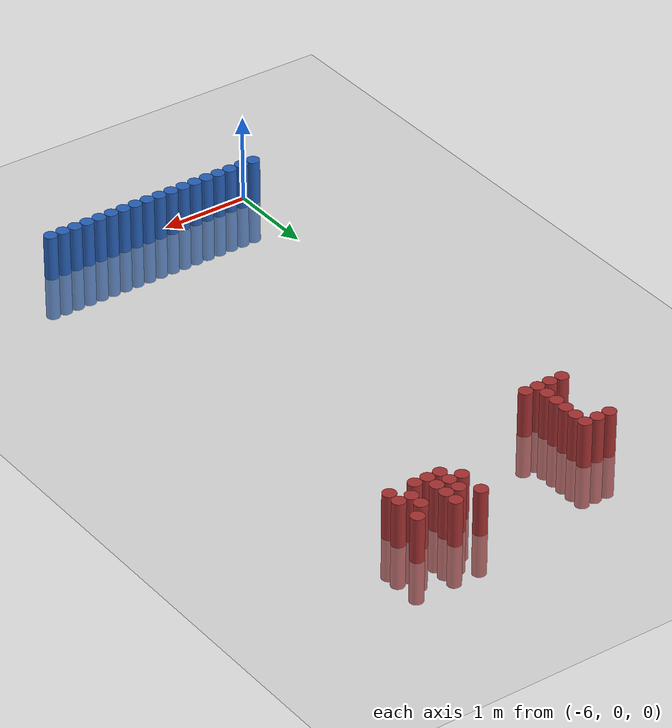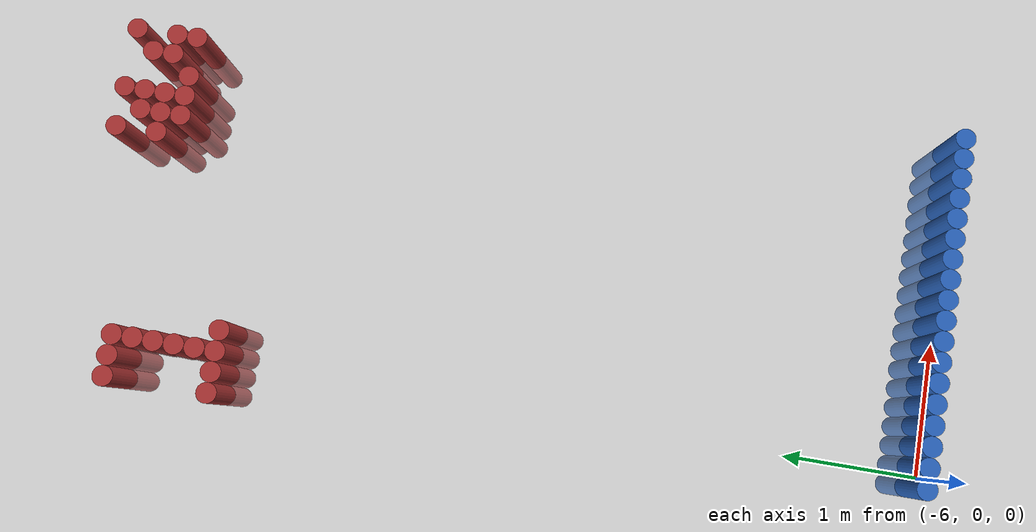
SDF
<sdf version="1.6">
 <world name="default">
  <model name="ground_plane">
   <static>1</static>
   <link name="link">
    <collision name="collision">
     <geometry><plane><normal>0 0 1</normal><size>100 100</size></plane></geometry>
     <surface><friction><ode><mu>100</mu><mu2>50</mu2></ode></friction></surface>
    </collision>
    <visual name="visual">
     <cast_shadows>0</cast_shadows>
     <geometry><plane><normal>0 0 1</normal><size>100 100</size></plane></geometry>
     <material>
      <script><uri>file://media/materials/scripts/gazebo.material</uri><name>Gazebo/Grey</name></script>
     </material>
    </visual>
   </link>
  </model>
  <model name="unit_cylinder_23">
   <static>1</static>
   <pose>-3.525000 0.075000 0.000000 0.000000 0.000000 0.000000</pose>
   <link name="link">
    <inertial>
     <mass>1</mass>
     <inertia><ixx>0.145833</ixx><ixy>0</ixy><ixz>0</ixz><iyy>0.145833</iyy><iyz>0</iyz><izz>0.125</izz></inertia>
    </inertial>
    <collision name="collision">
     <geometry><cylinder><radius>0.075000</radius><length>1</length></cylinder></geometry>
    </collision>
    <visual name="visual">
     <geometry><cylinder><radius>0.075000</radius><length>1</length></cylinder></geometry>
     <material>
      <ambient>0.152000 0.379000 0.720000 1</ambient>
      <diffuse>0.152000 0.379000 0.720000 1</diffuse>
     </material>
     <material>
      <script><name>Gazebo/Grey</name><uri>file://media/materials/scripts/gazebo.material</uri></script>
     </material>
    </visual>
   </link>
  </model>
  <model name="unit_cylinder_24">
   <static>1</static>
   <pose>-3.675000 0.075000 0.000000 0.000000 0.000000 0.000000</pose>
   <link name="link">
    <inertial>
     <mass>1</mass>
     <inertia><ixx>0.145833</ixx><ixy>0</ixy><ixz>0</ixz><iyy>0.145833</iyy><iyz>0</iyz><izz>0.125</izz></inertia>
    </inertial>
    <collision name="collision">
     <geometry><cylinder><radius>0.075000</radius><length>1</length></cylinder></geometry>
    </collision>
    <visual name="visual">
     <geometry><cylinder><radius>0.075000</radius><length>1</length></cylinder></geometry>
     <material>
      <ambient>0.152000 0.379000 0.720000 1</ambient>
      <diffuse>0.152000 0.379000 0.720000 1</diffuse>
     </material>
     <material>
      <script><name>Gazebo/Grey</name><uri>file://media/materials/scripts/gazebo.material</uri></script>
     </material>
    </visual>
   </link>
  </model>
  <model name="unit_cylinder_25">
   <static>1</static>
   <pose>-3.825000 0.075000 0.000000 0.000000 0.000000 0.000000</pose>
   <link name="link">
    <inertial>
     <mass>1</mass>
     <inertia><ixx>0.145833</ixx><ixy>0</ixy><ixz>0</ixz><iyy>0.145833</iyy><iyz>0</iyz><izz>0.125</izz></inertia>
    </inertial>
    <collision name="collision">
     <geometry><cylinder><radius>0.075000</radius><length>1</length></cylinder></geometry>
    </collision>
    <visual name="visual">
     <geometry><cylinder><radius>0.075000</radius><length>1</length></cylinder></geometry>
     <material>
      <ambient>0.152000 0.379000 0.720000 1</ambient>
      <diffuse>0.152000 0.379000 0.720000 1</diffuse>
     </material>
     <material>
      <script><name>Gazebo/Grey</name><uri>file://media/materials/scripts/gazebo.material</uri></script>
     </material>
    </visual>
   </link>
  </model>
  <model name="unit_cylinder_26">
   <static>1</static>
   <pose>-3.975000 0.075000 0.000000 0.000000 0.000000 0.000000</pose>
   <link name="link">
    <inertial>
     <mass>1</mass>
     <inertia><ixx>0.145833</ixx><ixy>0</ixy><ixz>0</ixz><iyy>0.145833</iyy><iyz>0</iyz><izz>0.125</izz></inertia>
    </inertial>
    <collision name="collision">
     <geometry><cylinder><radius>0.075000</radius><length>1</length></cylinder></geometry>
    </collision>
    <visual name="visual">
     <geometry><cylinder><radius>0.075000</radius><length>1</length></cylinder></geometry>
     <material>
      <ambient>0.152000 0.379000 0.720000 1</ambient>
      <diffuse>0.152000 0.379000 0.720000 1</diffuse>
     </material>
     <material>
      <script><name>Gazebo/Grey</name><uri>file://media/materials/scripts/gazebo.material</uri></script>
     </material>
    </visual>
   </link>
  </model>
  <model name="unit_cylinder_27">
   <static>1</static>
   <pose>-4.125000 0.075000 0.000000 0.000000 0.000000 0.000000</pose>
   <link name="link">
    <inertial>
     <mass>1</mass>
     <inertia><ixx>0.145833</ixx><ixy>0</ixy><ixz>0</ixz><iyy>0.145833</iyy><iyz>0</iyz><izz>0.125</izz></inertia>
    </inertial>
    <collision name="collision">
     <geometry><cylinder><radius>0.075000</radius><length>1</length></cylinder></geometry>
    </collision>
    <visual name="visual">
     <geometry><cylinder><radius>0.075000</radius><length>1</length></cylinder></geometry>
     <material>
      <ambient>0.152000 0.379000 0.720000 1</ambient>
      <diffuse>0.152000 0.379000 0.720000 1</diffuse>
     </material>
     <material>
      <script><name>Gazebo/Grey</name><uri>file://media/materials/scripts/gazebo.material</uri></script>
     </material>
    </visual>
   </link>
  </model>
  <model name="unit_cylinder_28">
   <static>1</static>
   <pose>-4.275000 0.075000 0.000000 0.000000 0.000000 0.000000</pose>
   <link name="link">
    <inertial>
     <mass>1</mass>
     <inertia><ixx>0.145833</ixx><ixy>0</ixy><ixz>0</ixz><iyy>0.145833</iyy><iyz>0</iyz><izz>0.125</izz></inertia>
    </inertial>
    <collision name="collision">
     <geometry><cylinder><radius>0.075000</radius><length>1</length></cylinder></geometry>
    </collision>
    <visual name="visual">
     <geometry><cylinder><radius>0.075000</radius><length>1</length></cylinder></geometry>
     <material>
      <ambient>0.152000 0.379000 0.720000 1</ambient>
      <diffuse>0.152000 0.379000 0.720000 1</diffuse>
     </material>
     <material>
      <script><name>Gazebo/Grey</name><uri>file://media/materials/scripts/gazebo.material</uri></script>
     </material>
    </visual>
   </link>
  </model>
  <model name="unit_cylinder_29">
   <static>1</static>
   <pose>-4.425000 0.075000 0.000000 0.000000 0.000000 0.000000</pose>
   <link name="link">
    <inertial>
     <mass>1</mass>
     <inertia><ixx>0.145833</ixx><ixy>0</ixy><ixz>0</ixz><iyy>0.145833</iyy><iyz>0</iyz><izz>0.125</izz></inertia>
    </inertial>
    <collision name="collision">
     <geometry><cylinder><radius>0.075000</radius><length>1</length></cylinder></geometry>
    </collision>
    <visual name="visual">
     <geometry><cylinder><radius>0.075000</radius><length>1</length></cylinder></geometry>
     <material>
      <ambient>0.152000 0.379000 0.720000 1</ambient>
      <diffuse>0.152000 0.379000 0.720000 1</diffuse>
     </material>
     <material>
      <script><name>Gazebo/Grey</name><uri>file://media/materials/scripts/gazebo.material</uri></script>
     </material>
    </visual>
   </link>
  </model>
  <model name="unit_cylinder_30">
   <static>1</static>
   <pose>-4.575000 0.075000 0.000000 0.000000 0.000000 0.000000</pose>
   <link name="link">
    <inertial>
     <mass>1</mass>
     <inertia><ixx>0.145833</ixx><ixy>0</ixy><ixz>0</ixz><iyy>0.145833</iyy><iyz>0</iyz><izz>0.125</izz></inertia>
    </inertial>
    <collision name="collision">
     <geometry><cylinder><radius>0.075000</radius><length>1</length></cylinder></geometry>
    </collision>
    <visual name="visual">
     <geometry><cylinder><radius>0.075000</radius><length>1</length></cylinder></geometry>
     <material>
      <ambient>0.152000 0.379000 0.720000 1</ambient>
      <diffuse>0.152000 0.379000 0.720000 1</diffuse>
     </material>
     <material>
      <script><name>Gazebo/Grey</name><uri>file://media/materials/scripts/gazebo.material</uri></script>
     </material>
    </visual>
   </link>
  </model>
  <model name="unit_cylinder_31">
   <static>1</static>
   <pose>-4.725000 0.075000 0.000000 0.000000 0.000000 0.000000</pose>
   <link name="link">
    <inertial>
     <mass>1</mass>
     <inertia><ixx>0.145833</ixx><ixy>0</ixy><ixz>0</ixz><iyy>0.145833</iyy><iyz>0</iyz><izz>0.125</izz></inertia>
    </inertial>
    <collision name="collision">
     <geometry><cylinder><radius>0.075000</radius><length>1</length></cylinder></geometry>
    </collision>
    <visual name="visual">
     <geometry><cylinder><radius>0.075000</radius><length>1</length></cylinder></geometry>
     <material>
      <ambient>0.152000 0.379000 0.720000 1</ambient>
      <diffuse>0.152000 0.379000 0.720000 1</diffuse>
     </material>
     <material>
      <script><name>Gazebo/Grey</name><uri>file://media/materials/scripts/gazebo.material</uri></script>
     </material>
    </visual>
   </link>
  </model>
  <model name="unit_cylinder_32">
   <static>1</static>
   <pose>-4.875000 0.075000 0.000000 0.000000 0.000000 0.000000</pose>
   <link name="link">
    <inertial>
     <mass>1</mass>
     <inertia><ixx>0.145833</ixx><ixy>0</ixy><ixz>0</ixz><iyy>0.145833</iyy><iyz>0</iyz><izz>0.125</izz></inertia>
    </inertial>
    <collision name="collision">
     <geometry><cylinder><radius>0.075000</radius><length>1</length></cylinder></geometry>
    </collision>
    <visual name="visual">
     <geometry><cylinder><radius>0.075000</radius><length>1</length></cylinder></geometry>
     <material>
      <ambient>0.152000 0.379000 0.720000 1</ambient>
      <diffuse>0.152000 0.379000 0.720000 1</diffuse>
     </material>
     <material>
      <script><name>Gazebo/Grey</name><uri>file://media/materials/scripts/gazebo.material</uri></script>
     </material>
    </visual>
   </link>
  </model>
  <model name="unit_cylinder_33">
   <static>1</static>
   <pose>-5.025000 0.075000 0.000000 0.000000 0.000000 0.000000</pose>
   <link name="link">
    <inertial>
     <mass>1</mass>
     <inertia><ixx>0.145833</ixx><ixy>0</ixy><ixz>0</ixz><iyy>0.145833</iyy><iyz>0</iyz><izz>0.125</izz></inertia>
    </inertial>
    <collision name="collision">
     <geometry><cylinder><radius>0.075000</radius><length>1</length></cylinder></geometry>
    </collision>
    <visual name="visual">
     <geometry><cylinder><radius>0.075000</radius><length>1</length></cylinder></geometry>
     <material>
      <ambient>0.152000 0.379000 0.720000 1</ambient>
      <diffuse>0.152000 0.379000 0.720000 1</diffuse>
     </material>
     <material>
      <script><name>Gazebo/Grey</name><uri>file://media/materials/scripts/gazebo.material</uri></script>
     </material>
    </visual>
   </link>
  </model>
  <model name="unit_cylinder_34">
   <static>1</static>
   <pose>-5.175000 0.075000 0.000000 0.000000 0.000000 0.000000</pose>
   <link name="link">
    <inertial>
     <mass>1</mass>
     <inertia><ixx>0.145833</ixx><ixy>0</ixy><ixz>0</ixz><iyy>0.145833</iyy><iyz>0</iyz><izz>0.125</izz></inertia>
    </inertial>
    <collision name="collision">
     <geometry><cylinder><radius>0.075000</radius><length>1</length></cylinder></geometry>
    </collision>
    <visual name="visual">
     <geometry><cylinder><radius>0.075000</radius><length>1</length></cylinder></geometry>
     <material>
      <ambient>0.152000 0.379000 0.720000 1</ambient>
      <diffuse>0.152000 0.379000 0.720000 1</diffuse>
     </material>
     <material>
      <script><name>Gazebo/Grey</name><uri>file://media/materials/scripts/gazebo.material</uri></script>
     </material>
    </visual>
   </link>
  </model>
  <model name="unit_cylinder_35">
   <static>1</static>
   <pose>-5.325000 0.075000 0.000000 0.000000 0.000000 0.000000</pose>
   <link name="link">
    <inertial>
     <mass>1</mass>
     <inertia><ixx>0.145833</ixx><ixy>0</ixy><ixz>0</ixz><iyy>0.145833</iyy><iyz>0</iyz><izz>0.125</izz></inertia>
    </inertial>
    <collision name="collision">
     <geometry><cylinder><radius>0.075000</radius><length>1</length></cylinder></geometry>
    </collision>
    <visual name="visual">
     <geometry><cylinder><radius>0.075000</radius><length>1</length></cylinder></geometry>
     <material>
      <ambient>0.152000 0.379000 0.720000 1</ambient>
      <diffuse>0.152000 0.379000 0.720000 1</diffuse>
     </material>
     <material>
      <script><name>Gazebo/Grey</name><uri>file://media/materials/scripts/gazebo.material</uri></script>
     </material>
    </visual>
   </link>
  </model>
  <model name="unit_cylinder_36">
   <static>1</static>
   <pose>-5.475000 0.075000 0.000000 0.000000 0.000000 0.000000</pose>
   <link name="link">
    <inertial>
     <mass>1</mass>
     <inertia><ixx>0.145833</ixx><ixy>0</ixy><ixz>0</ixz><iyy>0.145833</iyy><iyz>0</iyz><izz>0.125</izz></inertia>
    </inertial>
    <collision name="collision">
     <geometry><cylinder><radius>0.075000</radius><length>1</length></cylinder></geometry>
    </collision>
    <visual name="visual">
     <geometry><cylinder><radius>0.075000</radius><length>1</length></cylinder></geometry>
     <material>
      <ambient>0.152000 0.379000 0.720000 1</ambient>
      <diffuse>0.152000 0.379000 0.720000 1</diffuse>
     </material>
     <material>
      <script><name>Gazebo/Grey</name><uri>file://media/materials/scripts/gazebo.material</uri></script>
     </material>
    </visual>
   </link>
  </model>
  <model name="unit_cylinder_37">
   <static>1</static>
   <pose>-5.625000 0.075000 0.000000 0.000000 0.000000 0.000000</pose>
   <link name="link">
    <inertial>
     <mass>1</mass>
     <inertia><ixx>0.145833</ixx><ixy>0</ixy><ixz>0</ixz><iyy>0.145833</iyy><iyz>0</iyz><izz>0.125</izz></inertia>
    </inertial>
    <collision name="collision">
     <geometry><cylinder><radius>0.075000</radius><length>1</length></cylinder></geometry>
    </collision>
    <visual name="visual">
     <geometry><cylinder><radius>0.075000</radius><length>1</length></cylinder></geometry>
     <material>
      <ambient>0.152000 0.379000 0.720000 1</ambient>
      <diffuse>0.152000 0.379000 0.720000 1</diffuse>
     </material>
     <material>
      <script><name>Gazebo/Grey</name><uri>file://media/materials/scripts/gazebo.material</uri></script>
     </material>
    </visual>
   </link>
  </model>
  <model name="unit_cylinder_38">
   <static>1</static>
   <pose>-5.775000 0.075000 0.000000 0.000000 0.000000 0.000000</pose>
   <link name="link">
    <inertial>
     <mass>1</mass>
     <inertia><ixx>0.145833</ixx><ixy>0</ixy><ixz>0</ixz><iyy>0.145833</iyy><iyz>0</iyz><izz>0.125</izz></inertia>
    </inertial>
    <collision name="collision">
     <geometry><cylinder><radius>0.075000</radius><length>1</length></cylinder></geometry>
    </collision>
    <visual name="visual">
     <geometry><cylinder><radius>0.075000</radius><length>1</length></cylinder></geometry>
     <material>
      <ambient>0.152000 0.379000 0.720000 1</ambient>
      <diffuse>0.152000 0.379000 0.720000 1</diffuse>
     </material>
     <material>
      <script><name>Gazebo/Grey</name><uri>file://media/materials/scripts/gazebo.material</uri></script>
     </material>
    </visual>
   </link>
  </model>
  <model name="unit_cylinder_39">
   <static>1</static>
   <pose>-5.925000 0.075000 0.000000 0.000000 0.000000 0.000000</pose>
   <link name="link">
    <inertial>
     <mass>1</mass>
     <inertia><ixx>0.145833</ixx><ixy>0</ixy><ixz>0</ixz><iyy>0.145833</iyy><iyz>0</iyz><izz>0.125</izz></inertia>
    </inertial>
    <collision name="collision">
     <geometry><cylinder><radius>0.075000</radius><length>1</length></cylinder></geometry>
    </collision>
    <visual name="visual">
     <geometry><cylinder><radius>0.075000</radius><length>1</length></cylinder></geometry>
     <material>
      <ambient>0.152000 0.379000 0.720000 1</ambient>
      <diffuse>0.152000 0.379000 0.720000 1</diffuse>
     </material>
     <material>
      <script><name>Gazebo/Grey</name><uri>file://media/materials/scripts/gazebo.material</uri></script>
     </material>
    </visual>
   </link>
  </model>
  <model name="unit_cylinder_40">
   <static>1</static>
   <pose>-6.075000 0.075000 0.000000 0.000000 0.000000 0.000000</pose>
   <link name="link">
    <inertial>
     <mass>1</mass>
     <inertia><ixx>0.145833</ixx><ixy>0</ixy><ixz>0</ixz><iyy>0.145833</iyy><iyz>0</iyz><izz>0.125</izz></inertia>
    </inertial>
    <collision name="collision">
     <geometry><cylinder><radius>0.075000</radius><length>1</length></cylinder></geometry>
    </collision>
    <visual name="visual">
     <geometry><cylinder><radius>0.075000</radius><length>1</length></cylinder></geometry>
     <material>
      <ambient>0.152000 0.379000 0.720000 1</ambient>
      <diffuse>0.152000 0.379000 0.720000 1</diffuse>
     </material>
     <material>
      <script><name>Gazebo/Grey</name><uri>file://media/materials/scripts/gazebo.material</uri></script>
     </material>
    </visual>
   </link>
  </model>
  <model name="unit_cylinder_239">
   <static>1</static>
   <pose>-6.225000 5.175000 0.000000 0.000000 0.000000 0.000000</pose>
   <link name="link">
    <inertial>
     <mass>1</mass>
     <inertia><ixx>0.145833</ixx><ixy>0</ixy><ixz>0</ixz><iyy>0.145833</iyy><iyz>0</iyz><izz>0.125</izz></inertia>
    </inertial>
    <collision name="collision">
     <geometry><cylinder><radius>0.075000</radius><length>1</length></cylinder></geometry>
    </collision>
    <visual name="visual">
     <geometry><cylinder><radius>0.075000</radius><length>1</length></cylinder></geometry>
     <material>
      <ambient>0.648000 0.192000 0.192000 1</ambient>
      <diffuse>0.648000 0.192000 0.192000 1</diffuse>
     </material>
     <material>
      <script><name>Gazebo/Grey</name><uri>file://media/materials/scripts/gazebo.material</uri></script>
     </material>
    </visual>
   </link>
  </model>
  <model name="unit_cylinder_240">
   <static>1</static>
   <pose>-6.225000 5.925000 0.000000 0.000000 0.000000 0.000000</pose>
   <link name="link">
    <inertial>
     <mass>1</mass>
     <inertia><ixx>0.145833</ixx><ixy>0</ixy><ixz>0</ixz><iyy>0.145833</iyy><iyz>0</iyz><izz>0.125</izz></inertia>
    </inertial>
    <collision name="collision">
     <geometry><cylinder><radius>0.075000</radius><length>1</length></cylinder></geometry>
    </collision>
    <visual name="visual">
     <geometry><cylinder><radius>0.075000</radius><length>1</length></cylinder></geometry>
     <material>
      <ambient>0.648000 0.192000 0.192000 1</ambient>
      <diffuse>0.648000 0.192000 0.192000 1</diffuse>
     </material>
     <material>
      <script><name>Gazebo/Grey</name><uri>file://media/materials/scripts/gazebo.material</uri></script>
     </material>
    </visual>
   </link>
  </model>
  <model name="unit_cylinder_246">
   <static>1</static>
   <pose>-6.075000 5.175000 0.000000 0.000000 0.000000 0.000000</pose>
   <link name="link">
    <inertial>
     <mass>1</mass>
     <inertia><ixx>0.145833</ixx><ixy>0</ixy><ixz>0</ixz><iyy>0.145833</iyy><iyz>0</iyz><izz>0.125</izz></inertia>
    </inertial>
    <collision name="collision">
     <geometry><cylinder><radius>0.075000</radius><length>1</length></cylinder></geometry>
    </collision>
    <visual name="visual">
     <geometry><cylinder><radius>0.075000</radius><length>1</length></cylinder></geometry>
     <material>
      <ambient>0.648000 0.192000 0.192000 1</ambient>
      <diffuse>0.648000 0.192000 0.192000 1</diffuse>
     </material>
     <material>
      <script><name>Gazebo/Grey</name><uri>file://media/materials/scripts/gazebo.material</uri></script>
     </material>
    </visual>
   </link>
  </model>
  <model name="unit_cylinder_247">
   <static>1</static>
   <pose>-6.075000 5.925000 0.000000 0.000000 0.000000 0.000000</pose>
   <link name="link">
    <inertial>
     <mass>1</mass>
     <inertia><ixx>0.145833</ixx><ixy>0</ixy><ixz>0</ixz><iyy>0.145833</iyy><iyz>0</iyz><izz>0.125</izz></inertia>
    </inertial>
    <collision name="collision">
     <geometry><cylinder><radius>0.075000</radius><length>1</length></cylinder></geometry>
    </collision>
    <visual name="visual">
     <geometry><cylinder><radius>0.075000</radius><length>1</length></cylinder></geometry>
     <material>
      <ambient>0.648000 0.192000 0.192000 1</ambient>
      <diffuse>0.648000 0.192000 0.192000 1</diffuse>
     </material>
     <material>
      <script><name>Gazebo/Grey</name><uri>file://media/materials/scripts/gazebo.material</uri></script>
     </material>
    </visual>
   </link>
  </model>
  <model name="unit_cylinder_250">
   <static>1</static>
   <pose>-5.925000 5.175000 0.000000 0.000000 0.000000 0.000000</pose>
   <link name="link">
    <inertial>
     <mass>1</mass>
     <inertia><ixx>0.145833</ixx><ixy>0</ixy><ixz>0</ixz><iyy>0.145833</iyy><iyz>0</iyz><izz>0.125</izz></inertia>
    </inertial>
    <collision name="collision">
     <geometry><cylinder><radius>0.075000</radius><length>1</length></cylinder></geometry>
    </collision>
    <visual name="visual">
     <geometry><cylinder><radius>0.075000</radius><length>1</length></cylinder></geometry>
     <material>
      <ambient>0.648000 0.192000 0.192000 1</ambient>
      <diffuse>0.648000 0.192000 0.192000 1</diffuse>
     </material>
     <material>
      <script><name>Gazebo/Grey</name><uri>file://media/materials/scripts/gazebo.material</uri></script>
     </material>
    </visual>
   </link>
  </model>
  <model name="unit_cylinder_251">
   <static>1</static>
   <pose>-5.925000 5.325000 0.000000 0.000000 0.000000 0.000000</pose>
   <link name="link">
    <inertial>
     <mass>1</mass>
     <inertia><ixx>0.145833</ixx><ixy>0</ixy><ixz>0</ixz><iyy>0.145833</iyy><iyz>0</iyz><izz>0.125</izz></inertia>
    </inertial>
    <collision name="collision">
     <geometry><cylinder><radius>0.075000</radius><length>1</length></cylinder></geometry>
    </collision>
    <visual name="visual">
     <geometry><cylinder><radius>0.075000</radius><length>1</length></cylinder></geometry>
     <material>
      <ambient>0.648000 0.192000 0.192000 1</ambient>
      <diffuse>0.648000 0.192000 0.192000 1</diffuse>
     </material>
     <material>
      <script><name>Gazebo/Grey</name><uri>file://media/materials/scripts/gazebo.material</uri></script>
     </material>
    </visual>
   </link>
  </model>
  <model name="unit_cylinder_252">
   <static>1</static>
   <pose>-5.925000 5.475000 0.000000 0.000000 0.000000 0.000000</pose>
   <link name="link">
    <inertial>
     <mass>1</mass>
     <inertia><ixx>0.145833</ixx><ixy>0</ixy><ixz>0</ixz><iyy>0.145833</iyy><iyz>0</iyz><izz>0.125</izz></inertia>
    </inertial>
    <collision name="collision">
     <geometry><cylinder><radius>0.075000</radius><length>1</length></cylinder></geometry>
    </collision>
    <visual name="visual">
     <geometry><cylinder><radius>0.075000</radius><length>1</length></cylinder></geometry>
     <material>
      <ambient>0.648000 0.192000 0.192000 1</ambient>
      <diffuse>0.648000 0.192000 0.192000 1</diffuse>
     </material>
     <material>
      <script><name>Gazebo/Grey</name><uri>file://media/materials/scripts/gazebo.material</uri></script>
     </material>
    </visual>
   </link>
  </model>
  <model name="unit_cylinder_253">
   <static>1</static>
   <pose>-5.925000 5.625000 0.000000 0.000000 0.000000 0.000000</pose>
   <link name="link">
    <inertial>
     <mass>1</mass>
     <inertia><ixx>0.145833</ixx><ixy>0</ixy><ixz>0</ixz><iyy>0.145833</iyy><iyz>0</iyz><izz>0.125</izz></inertia>
    </inertial>
    <collision name="collision">
     <geometry><cylinder><radius>0.075000</radius><length>1</length></cylinder></geometry>
    </collision>
    <visual name="visual">
     <geometry><cylinder><radius>0.075000</radius><length>1</length></cylinder></geometry>
     <material>
      <ambient>0.648000 0.192000 0.192000 1</ambient>
      <diffuse>0.648000 0.192000 0.192000 1</diffuse>
     </material>
     <material>
      <script><name>Gazebo/Grey</name><uri>file://media/materials/scripts/gazebo.material</uri></script>
     </material>
    </visual>
   </link>
  </model>
  <model name="unit_cylinder_254">
   <static>1</static>
   <pose>-5.925000 5.775000 0.000000 0.000000 0.000000 0.000000</pose>
   <link name="link">
    <inertial>
     <mass>1</mass>
     <inertia><ixx>0.145833</ixx><ixy>0</ixy><ixz>0</ixz><iyy>0.145833</iyy><iyz>0</iyz><izz>0.125</izz></inertia>
    </inertial>
    <collision name="collision">
     <geometry><cylinder><radius>0.075000</radius><length>1</length></cylinder></geometry>
    </collision>
    <visual name="visual">
     <geometry><cylinder><radius>0.075000</radius><length>1</length></cylinder></geometry>
     <material>
      <ambient>0.648000 0.192000 0.192000 1</ambient>
      <diffuse>0.648000 0.192000 0.192000 1</diffuse>
     </material>
     <material>
      <script><name>Gazebo/Grey</name><uri>file://media/materials/scripts/gazebo.material</uri></script>
     </material>
    </visual>
   </link>
  </model>
  <model name="unit_cylinder_255">
   <static>1</static>
   <pose>-5.925000 5.925000 0.000000 0.000000 0.000000 0.000000</pose>
   <link name="link">
    <inertial>
     <mass>1</mass>
     <inertia><ixx>0.145833</ixx><ixy>0</ixy><ixz>0</ixz><iyy>0.145833</iyy><iyz>0</iyz><izz>0.125</izz></inertia>
    </inertial>
    <collision name="collision">
     <geometry><cylinder><radius>0.075000</radius><length>1</length></cylinder></geometry>
    </collision>
    <visual name="visual">
     <geometry><cylinder><radius>0.075000</radius><length>1</length></cylinder></geometry>
     <material>
      <ambient>0.648000 0.192000 0.192000 1</ambient>
      <diffuse>0.648000 0.192000 0.192000 1</diffuse>
     </material>
     <material>
      <script><name>Gazebo/Grey</name><uri>file://media/materials/scripts/gazebo.material</uri></script>
     </material>
    </visual>
   </link>
  </model>
  <model name="unit_cylinder_256">
   <static>1</static>
   <pose>-5.775000 5.175000 0.000000 0.000000 0.000000 0.000000</pose>
   <link name="link">
    <inertial>
     <mass>1</mass>
     <inertia><ixx>0.145833</ixx><ixy>0</ixy><ixz>0</ixz><iyy>0.145833</iyy><iyz>0</iyz><izz>0.125</izz></inertia>
    </inertial>
    <collision name="collision">
     <geometry><cylinder><radius>0.075000</radius><length>1</length></cylinder></geometry>
    </collision>
    <visual name="visual">
     <geometry><cylinder><radius>0.075000</radius><length>1</length></cylinder></geometry>
     <material>
      <ambient>0.648000 0.192000 0.192000 1</ambient>
      <diffuse>0.648000 0.192000 0.192000 1</diffuse>
     </material>
     <material>
      <script><name>Gazebo/Grey</name><uri>file://media/materials/scripts/gazebo.material</uri></script>
     </material>
    </visual>
   </link>
  </model>
  <model name="unit_cylinder_277">
   <static>1</static>
   <pose>-4.425000 5.925000 0.000000 0.000000 0.000000 0.000000</pose>
   <link name="link">
    <inertial>
     <mass>1</mass>
     <inertia><ixx>0.145833</ixx><ixy>0</ixy><ixz>0</ixz><iyy>0.145833</iyy><iyz>0</iyz><izz>0.125</izz></inertia>
    </inertial>
    <collision name="collision">
     <geometry><cylinder><radius>0.075000</radius><length>1</length></cylinder></geometry>
    </collision>
    <visual name="visual">
     <geometry><cylinder><radius>0.075000</radius><length>1</length></cylinder></geometry>
     <material>
      <ambient>0.648000 0.192000 0.192000 1</ambient>
      <diffuse>0.648000 0.192000 0.192000 1</diffuse>
     </material>
     <material>
      <script><name>Gazebo/Grey</name><uri>file://media/materials/scripts/gazebo.material</uri></script>
     </material>
    </visual>
   </link>
  </model>
  <model name="unit_cylinder_278">
   <static>1</static>
   <pose>-4.425000 6.225000 0.000000 0.000000 0.000000 0.000000</pose>
   <link name="link">
    <inertial>
     <mass>1</mass>
     <inertia><ixx>0.145833</ixx><ixy>0</ixy><ixz>0</ixz><iyy>0.145833</iyy><iyz>0</iyz><izz>0.125</izz></inertia>
    </inertial>
    <collision name="collision">
     <geometry><cylinder><radius>0.075000</radius><length>1</length></cylinder></geometry>
    </collision>
    <visual name="visual">
     <geometry><cylinder><radius>0.075000</radius><length>1</length></cylinder></geometry>
     <material>
      <ambient>0.648000 0.192000 0.192000 1</ambient>
      <diffuse>0.648000 0.192000 0.192000 1</diffuse>
     </material>
     <material>
      <script><name>Gazebo/Grey</name><uri>file://media/materials/scripts/gazebo.material</uri></script>
     </material>
    </visual>
   </link>
  </model>
  <model name="unit_cylinder_290">
   <static>1</static>
   <pose>-4.275000 5.775000 0.000000 0.000000 0.000000 0.000000</pose>
   <link name="link">
    <inertial>
     <mass>1</mass>
     <inertia><ixx>0.145833</ixx><ixy>0</ixy><ixz>0</ixz><iyy>0.145833</iyy><iyz>0</iyz><izz>0.125</izz></inertia>
    </inertial>
    <collision name="collision">
     <geometry><cylinder><radius>0.075000</radius><length>1</length></cylinder></geometry>
    </collision>
    <visual name="visual">
     <geometry><cylinder><radius>0.075000</radius><length>1</length></cylinder></geometry>
     <material>
      <ambient>0.648000 0.192000 0.192000 1</ambient>
      <diffuse>0.648000 0.192000 0.192000 1</diffuse>
     </material>
     <material>
      <script><name>Gazebo/Grey</name><uri>file://media/materials/scripts/gazebo.material</uri></script>
     </material>
    </visual>
   </link>
  </model>
  <model name="unit_cylinder_291">
   <static>1</static>
   <pose>-4.275000 5.925000 0.000000 0.000000 0.000000 0.000000</pose>
   <link name="link">
    <inertial>
     <mass>1</mass>
     <inertia><ixx>0.145833</ixx><ixy>0</ixy><ixz>0</ixz><iyy>0.145833</iyy><iyz>0</iyz><izz>0.125</izz></inertia>
    </inertial>
    <collision name="collision">
     <geometry><cylinder><radius>0.075000</radius><length>1</length></cylinder></geometry>
    </collision>
    <visual name="visual">
     <geometry><cylinder><radius>0.075000</radius><length>1</length></cylinder></geometry>
     <material>
      <ambient>0.648000 0.192000 0.192000 1</ambient>
      <diffuse>0.648000 0.192000 0.192000 1</diffuse>
     </material>
     <material>
      <script><name>Gazebo/Grey</name><uri>file://media/materials/scripts/gazebo.material</uri></script>
     </material>
    </visual>
   </link>
  </model>
  <model name="unit_cylinder_292">
   <static>1</static>
   <pose>-4.275000 6.075000 0.000000 0.000000 0.000000 0.000000</pose>
   <link name="link">
    <inertial>
     <mass>1</mass>
     <inertia><ixx>0.145833</ixx><ixy>0</ixy><ixz>0</ixz><iyy>0.145833</iyy><iyz>0</iyz><izz>0.125</izz></inertia>
    </inertial>
    <collision name="collision">
     <geometry><cylinder><radius>0.075000</radius><length>1</length></cylinder></geometry>
    </collision>
    <visual name="visual">
     <geometry><cylinder><radius>0.075000</radius><length>1</length></cylinder></geometry>
     <material>
      <ambient>0.648000 0.192000 0.192000 1</ambient>
      <diffuse>0.648000 0.192000 0.192000 1</diffuse>
     </material>
     <material>
      <script><name>Gazebo/Grey</name><uri>file://media/materials/scripts/gazebo.material</uri></script>
     </material>
    </visual>
   </link>
  </model>
  <model name="unit_cylinder_302">
   <static>1</static>
   <pose>-4.125000 5.775000 0.000000 0.000000 0.000000 0.000000</pose>
   <link name="link">
    <inertial>
     <mass>1</mass>
     <inertia><ixx>0.145833</ixx><ixy>0</ixy><ixz>0</ixz><iyy>0.145833</iyy><iyz>0</iyz><izz>0.125</izz></inertia>
    </inertial>
    <collision name="collision">
     <geometry><cylinder><radius>0.075000</radius><length>1</length></cylinder></geometry>
    </collision>
    <visual name="visual">
     <geometry><cylinder><radius>0.075000</radius><length>1</length></cylinder></geometry>
     <material>
      <ambient>0.648000 0.192000 0.192000 1</ambient>
      <diffuse>0.648000 0.192000 0.192000 1</diffuse>
     </material>
     <material>
      <script><name>Gazebo/Grey</name><uri>file://media/materials/scripts/gazebo.material</uri></script>
     </material>
    </visual>
   </link>
  </model>
  <model name="unit_cylinder_303">
   <static>1</static>
   <pose>-4.125000 5.925000 0.000000 0.000000 0.000000 0.000000</pose>
   <link name="link">
    <inertial>
     <mass>1</mass>
     <inertia><ixx>0.145833</ixx><ixy>0</ixy><ixz>0</ixz><iyy>0.145833</iyy><iyz>0</iyz><izz>0.125</izz></inertia>
    </inertial>
    <collision name="collision">
     <geometry><cylinder><radius>0.075000</radius><length>1</length></cylinder></geometry>
    </collision>
    <visual name="visual">
     <geometry><cylinder><radius>0.075000</radius><length>1</length></cylinder></geometry>
     <material>
      <ambient>0.648000 0.192000 0.192000 1</ambient>
      <diffuse>0.648000 0.192000 0.192000 1</diffuse>
     </material>
     <material>
      <script><name>Gazebo/Grey</name><uri>file://media/materials/scripts/gazebo.material</uri></script>
     </material>
    </visual>
   </link>
  </model>
  <model name="unit_cylinder_304">
   <static>1</static>
   <pose>-4.125000 6.075000 0.000000 0.000000 0.000000 0.000000</pose>
   <link name="link">
    <inertial>
     <mass>1</mass>
     <inertia><ixx>0.145833</ixx><ixy>0</ixy><ixz>0</ixz><iyy>0.145833</iyy><iyz>0</iyz><izz>0.125</izz></inertia>
    </inertial>
    <collision name="collision">
     <geometry><cylinder><radius>0.075000</radius><length>1</length></cylinder></geometry>
    </collision>
    <visual name="visual">
     <geometry><cylinder><radius>0.075000</radius><length>1</length></cylinder></geometry>
     <material>
      <ambient>0.648000 0.192000 0.192000 1</ambient>
      <diffuse>0.648000 0.192000 0.192000 1</diffuse>
     </material>
     <material>
      <script><name>Gazebo/Grey</name><uri>file://media/materials/scripts/gazebo.material</uri></script>
     </material>
    </visual>
   </link>
  </model>
  <model name="unit_cylinder_305">
   <static>1</static>
   <pose>-4.125000 6.225000 0.000000 0.000000 0.000000 0.000000</pose>
   <link name="link">
    <inertial>
     <mass>1</mass>
     <inertia><ixx>0.145833</ixx><ixy>0</ixy><ixz>0</ixz><iyy>0.145833</iyy><iyz>0</iyz><izz>0.125</izz></inertia>
    </inertial>
    <collision name="collision">
     <geometry><cylinder><radius>0.075000</radius><length>1</length></cylinder></geometry>
    </collision>
    <visual name="visual">
     <geometry><cylinder><radius>0.075000</radius><length>1</length></cylinder></geometry>
     <material>
      <ambient>0.648000 0.192000 0.192000 1</ambient>
      <diffuse>0.648000 0.192000 0.192000 1</diffuse>
     </material>
     <material>
      <script><name>Gazebo/Grey</name><uri>file://media/materials/scripts/gazebo.material</uri></script>
     </material>
    </visual>
   </link>
  </model>
  <model name="unit_cylinder_311">
   <static>1</static>
   <pose>-3.975000 5.775000 0.000000 0.000000 0.000000 0.000000</pose>
   <link name="link">
    <inertial>
     <mass>1</mass>
     <inertia><ixx>0.145833</ixx><ixy>0</ixy><ixz>0</ixz><iyy>0.145833</iyy><iyz>0</iyz><izz>0.125</izz></inertia>
    </inertial>
    <collision name="collision">
     <geometry><cylinder><radius>0.075000</radius><length>1</length></cylinder></geometry>
    </collision>
    <visual name="visual">
     <geometry><cylinder><radius>0.075000</radius><length>1</length></cylinder></geometry>
     <material>
      <ambient>0.648000 0.192000 0.192000 1</ambient>
      <diffuse>0.648000 0.192000 0.192000 1</diffuse>
     </material>
     <material>
      <script><name>Gazebo/Grey</name><uri>file://media/materials/scripts/gazebo.material</uri></script>
     </material>
    </visual>
   </link>
  </model>
  <model name="unit_cylinder_317">
   <static>1</static>
   <pose>-3.825000 5.925000 0.000000 0.000000 0.000000 0.000000</pose>
   <link name="link">
    <inertial>
     <mass>1</mass>
     <inertia><ixx>0.145833</ixx><ixy>0</ixy><ixz>0</ixz><iyy>0.145833</iyy><iyz>0</iyz><izz>0.125</izz></inertia>
    </inertial>
    <collision name="collision">
     <geometry><cylinder><radius>0.075000</radius><length>1</length></cylinder></geometry>
    </collision>
    <visual name="visual">
     <geometry><cylinder><radius>0.075000</radius><length>1</length></cylinder></geometry>
     <material>
      <ambient>0.648000 0.192000 0.192000 1</ambient>
      <diffuse>0.648000 0.192000 0.192000 1</diffuse>
     </material>
     <material>
      <script><name>Gazebo/Grey</name><uri>file://media/materials/scripts/gazebo.material</uri></script>
     </material>
    </visual>
   </link>
  </model>
  <model name="unit_cylinder_318">
   <static>1</static>
   <pose>-3.825000 6.075000 0.000000 0.000000 0.000000 0.000000</pose>
   <link name="link">
    <inertial>
     <mass>1</mass>
     <inertia><ixx>0.145833</ixx><ixy>0</ixy><ixz>0</ixz><iyy>0.145833</iyy><iyz>0</iyz><izz>0.125</izz></inertia>
    </inertial>
    <collision name="collision">
     <geometry><cylinder><radius>0.075000</radius><length>1</length></cylinder></geometry>
    </collision>
    <visual name="visual">
     <geometry><cylinder><radius>0.075000</radius><length>1</length></cylinder></geometry>
     <material>
      <ambient>0.648000 0.192000 0.192000 1</ambient>
      <diffuse>0.648000 0.192000 0.192000 1</diffuse>
     </material>
     <material>
      <script><name>Gazebo/Grey</name><uri>file://media/materials/scripts/gazebo.material</uri></script>
     </material>
    </visual>
   </link>
  </model>
  <model name="unit_cylinder_323">
   <static>1</static>
   <pose>-3.675000 5.775000 0.000000 0.000000 0.000000 0.000000</pose>
   <link name="link">
    <inertial>
     <mass>1</mass>
     <inertia><ixx>0.145833</ixx><ixy>0</ixy><ixz>0</ixz><iyy>0.145833</iyy><iyz>0</iyz><izz>0.125</izz></inertia>
    </inertial>
    <collision name="collision">
     <geometry><cylinder><radius>0.075000</radius><length>1</length></cylinder></geometry>
    </collision>
    <visual name="visual">
     <geometry><cylinder><radius>0.075000</radius><length>1</length></cylinder></geometry>
     <material>
      <ambient>0.648000 0.192000 0.192000 1</ambient>
      <diffuse>0.648000 0.192000 0.192000 1</diffuse>
     </material>
     <material>
      <script><name>Gazebo/Grey</name><uri>file://media/materials/scripts/gazebo.material</uri></script>
     </material>
    </visual>
   </link>
  </model>
  <model name="unit_cylinder_324">
   <static>1</static>
   <pose>-3.675000 5.925000 0.000000 0.000000 0.000000 0.000000</pose>
   <link name="link">
    <inertial>
     <mass>1</mass>
     <inertia><ixx>0.145833</ixx><ixy>0</ixy><ixz>0</ixz><iyy>0.145833</iyy><iyz>0</iyz><izz>0.125</izz></inertia>
    </inertial>
    <collision name="collision">
     <geometry><cylinder><radius>0.075000</radius><length>1</length></cylinder></geometry>
    </collision>
    <visual name="visual">
     <geometry><cylinder><radius>0.075000</radius><length>1</length></cylinder></geometry>
     <material>
      <ambient>0.648000 0.192000 0.192000 1</ambient>
      <diffuse>0.648000 0.192000 0.192000 1</diffuse>
     </material>
     <material>
      <script><name>Gazebo/Grey</name><uri>file://media/materials/scripts/gazebo.material</uri></script>
     </material>
    </visual>
   </link>
  </model>
  <model name="unit_cylinder_325">
   <static>1</static>
   <pose>-3.675000 6.225000 0.000000 0.000000 0.000000 0.000000</pose>
   <link name="link">
    <inertial>
     <mass>1</mass>
     <inertia><ixx>0.145833</ixx><ixy>0</ixy><ixz>0</ixz><iyy>0.145833</iyy><iyz>0</iyz><izz>0.125</izz></inertia>
    </inertial>
    <collision name="collision">
     <geometry><cylinder><radius>0.075000</radius><length>1</length></cylinder></geometry>
    </collision>
    <visual name="visual">
     <geometry><cylinder><radius>0.075000</radius><length>1</length></cylinder></geometry>
     <material>
      <ambient>0.648000 0.192000 0.192000 1</ambient>
      <diffuse>0.648000 0.192000 0.192000 1</diffuse>
     </material>
     <material>
      <script><name>Gazebo/Grey</name><uri>file://media/materials/scripts/gazebo.material</uri></script>
     </material>
    </visual>
   </link>
  </model>
 </world>
</sdf>
